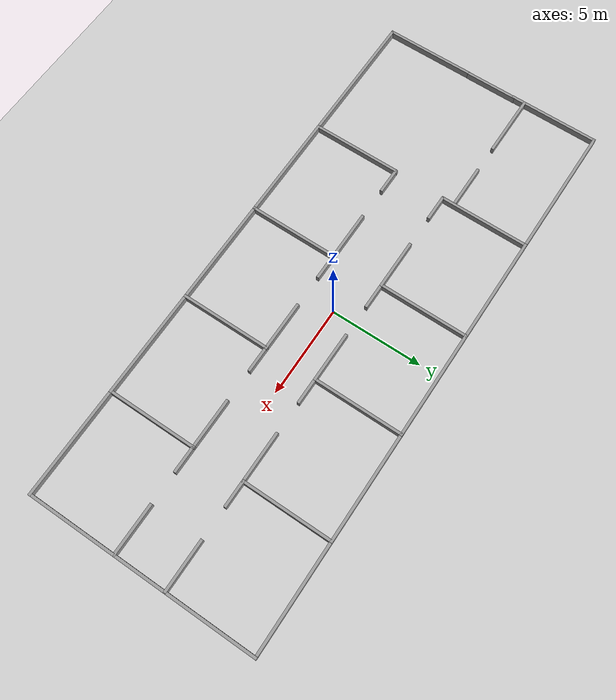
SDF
<sdf version="1.6">
 <world name="default">
  <light name="sun" type="directional">
   <pose>0 0 10 0 -0 0</pose>
   <diffuse>0.8 0.8 0.8 1</diffuse>
   <specular>0.2 0.2 0.2 1</specular>
   <attenuation>
    <range>1000</range>
    <constant>0.9</constant>
    <linear>0.01</linear>
    <quadratic>0.001</quadratic>
   </attenuation>
   <direction>-0.5 0.1 -0.9</direction>
  </light>
  <model name="ground_plane">
   <static>1</static>
   <link name="link">
    <collision name="collision">
     <geometry><plane><normal>0 0 1</normal><size>100 100</size></plane></geometry>
     <surface>
      <contact><collide_bitmask>65535</collide_bitmask></contact>
      <friction><ode><mu>100</mu><mu2>50</mu2></ode></friction>
     </surface>
    </collision>
    <visual name="visual">
     <cast_shadows>0</cast_shadows>
     <geometry><plane><normal>0 0 1</normal><size>100 100</size></plane></geometry>
     <material>
      <script><uri>file://media/materials/scripts/gazebo.material</uri><name>Gazebo/Grey</name></script>
     </material>
    </visual>
   </link>
  </model>
  <gravity>0 0 -9.8</gravity>
  <magnetic_field>6e-06 2.3e-05 -4.2e-05</magnetic_field>
  <atmosphere type="adiabatic"/>
  <physics name="default_physics" default="0" type="ode">
   <max_step_size>0.001</max_step_size>
   <real_time_factor>1</real_time_factor>
   <real_time_update_rate>1000</real_time_update_rate>
  </physics>
  <scene><ambient>0.4 0.4 0.4 1</ambient><background>0.7 0.7 0.7 1</background><shadows>1</shadows></scene>
  <audio><device>default</device></audio>
  <spherical_coordinates>
   <surface_model>EARTH_WGS84</surface_model>
   <latitude_deg>0</latitude_deg>
   <longitude_deg>0</longitude_deg>
   <elevation>0</elevation>
   <heading_deg>0</heading_deg>
  </spherical_coordinates>
  <model name="UCI">
   <pose>-0.200862 -0.165229 0 0 -0 0</pose>
   <link name="Wall_1">
    <collision name="Wall_1_Collision">
     <geometry><box><size>6 0.15 0.4</size></box></geometry>
     <pose>0 0 0.2 0 -0 0</pose>
    </collision>
    <visual name="Wall_1_Visual">
     <pose>0 0 0.2 0 -0 0</pose>
     <geometry><box><size>6 0.15 0.4</size></box></geometry>
     <material>
      <script><uri>file://media/materials/scripts/gazebo.material</uri><name>Gazebo/Grey</name></script>
      <ambient>1 1 1 1</ambient>
     </material>
     <meta><layer>0</layer></meta>
    </visual>
    <pose>-5.10007 -6.275 0 0 -0 0</pose>
   </link>
   <link name="Wall_10">
    <collision name="Wall_10_Collision">
     <geometry><box><size>5 0.15 0.4</size></box></geometry>
     <pose>0 0 0.2 0 -0 0</pose>
    </collision>
    <visual name="Wall_10_Visual">
     <pose>0 0 0.2 0 -0 0</pose>
     <geometry><box><size>5 0.15 0.4</size></box></geometry>
     <material>
      <script><uri>file://media/materials/scripts/gazebo.material</uri><name>Gazebo/Grey</name></script>
      <ambient>1 1 1 1</ambient>
     </material>
     <meta><layer>0</layer></meta>
    </visual>
    <pose>15.3749 -3.85 0 0 -0 -1.5708</pose>
   </link>
   <link name="Wall_13">
    <collision name="Wall_13_Collision">
     <geometry><box><size>6 0.15 0.4</size></box></geometry>
     <pose>0 0 0.2 0 -0 0</pose>
    </collision>
    <visual name="Wall_13_Visual">
     <pose>0 0 0.2 0 -0 0</pose>
     <geometry><box><size>6 0.15 0.4</size></box></geometry>
     <material>
      <script><uri>file://media/materials/scripts/gazebo.material</uri><name>Gazebo/Grey</name></script>
      <ambient>1 1 1 1</ambient>
     </material>
     <meta><layer>0</layer></meta>
    </visual>
    <pose>0.749934 -6.275 0 0 -0 0</pose>
   </link>
   <link name="Wall_15">
    <collision name="Wall_15_Collision">
     <geometry><box><size>6.00027 0.15 0.4</size></box></geometry>
     <pose>0 0 0.2 0 -0 0</pose>
    </collision>
    <visual name="Wall_15_Visual">
     <pose>0 0 0.2 0 -0 0</pose>
     <geometry><box><size>6.00027 0.15 0.4</size></box></geometry>
     <material>
      <script><uri>file://media/materials/scripts/gazebo.material</uri><name>Gazebo/Grey</name></script>
      <ambient>1 1 1 1</ambient>
     </material>
     <meta><layer>0</layer></meta>
    </visual>
    <pose>12.4499 -6.275 0 0 -0 0</pose>
   </link>
   <link name="Wall_17">
    <collision name="Wall_17_Collision">
     <geometry><box><size>3 0.15 0.4</size></box></geometry>
     <pose>0 0 0.2 0 -0 0</pose>
    </collision>
    <visual name="Wall_17_Visual">
     <pose>0 0 0.2 0 -0 0</pose>
     <geometry><box><size>3 0.15 0.4</size></box></geometry>
     <material>
      <script><uri>file://media/materials/scripts/gazebo.material</uri><name>Gazebo/Grey</name></script>
      <ambient>1 1 1 1</ambient>
     </material>
     <meta><layer>0</layer></meta>
    </visual>
    <pose>15.3749 -0 0 0 -0 1.5708</pose>
   </link>
   <link name="Wall_19">
    <collision name="Wall_19_Collision">
     <geometry><box><size>5 0.15 0.4</size></box></geometry>
     <pose>0 0 0.2 0 -0 0</pose>
    </collision>
    <visual name="Wall_19_Visual">
     <pose>0 0 0.2 0 -0 0</pose>
     <geometry><box><size>5 0.15 0.4</size></box></geometry>
     <material>
      <script><uri>file://media/materials/scripts/gazebo.material</uri><name>Gazebo/Grey</name></script>
      <ambient>1 1 1 1</ambient>
     </material>
     <meta><layer>0</layer></meta>
    </visual>
    <pose>15.3749 3.85 0 0 -0 1.5708</pose>
   </link>
   <link name="Wall_2">
    <collision name="Wall_2_Collision">
     <geometry><box><size>5 0.15 0.4</size></box></geometry>
     <pose>0 0 0.2 0 -0 0</pose>
    </collision>
    <visual name="Wall_2_Visual">
     <pose>0 0 0.2 0 -0 0</pose>
     <geometry><box><size>5 0.15 0.4</size></box></geometry>
     <material>
      <script><uri>file://media/materials/scripts/gazebo.material</uri><name>Gazebo/Grey</name></script>
      <ambient>1 1 1 1</ambient>
     </material>
     <meta><layer>0</layer></meta>
    </visual>
    <pose>-2.17507 -3.85 0 0 -0 1.5708</pose>
   </link>
   <link name="Wall_20">
    <collision name="Wall_20_Collision">
     <geometry><box><size>6 0.15 0.4</size></box></geometry>
     <pose>0 0 0.2 0 -0 0</pose>
    </collision>
    <visual name="Wall_20_Visual">
     <pose>0 0 0.2 0 -0 0</pose>
     <geometry><box><size>6 0.15 0.4</size></box></geometry>
     <material>
      <script><uri>file://media/materials/scripts/gazebo.material</uri><name>Gazebo/Grey</name></script>
      <ambient>1 1 1 1</ambient>
     </material>
     <meta><layer>0</layer></meta>
    </visual>
    <pose>12.4499 6.275 0 0 -0 3.14159</pose>
   </link>
   <link name="Wall_21">
    <collision name="Wall_21_Collision">
     <geometry><box><size>5 0.15 0.4</size></box></geometry>
     <pose>0 0 0.2 0 -0 0</pose>
    </collision>
    <visual name="Wall_21_Visual">
     <pose>0 0 0.2 0 -0 0</pose>
     <geometry><box><size>5 0.15 0.4</size></box></geometry>
     <material>
      <script><uri>file://media/materials/scripts/gazebo.material</uri><name>Gazebo/Grey</name></script>
      <ambient>1 1 1 1</ambient>
     </material>
     <meta><layer>0</layer></meta>
    </visual>
    <pose>9.52493 3.85 0 0 -0 -1.5708</pose>
   </link>
   <link name="Wall_23">
    <collision name="Wall_23_Collision">
     <geometry><box><size>5 0.15 0.4</size></box></geometry>
     <pose>0 0 0.2 0 -0 0</pose>
    </collision>
    <visual name="Wall_23_Visual">
     <pose>0 0 0.2 0 -0 0</pose>
     <geometry><box><size>5 0.15 0.4</size></box></geometry>
     <material>
      <script><uri>file://media/materials/scripts/gazebo.material</uri><name>Gazebo/Grey</name></script>
      <ambient>1 1 1 1</ambient>
     </material>
     <meta><layer>0</layer></meta>
    </visual>
    <pose>3.67493 3.85 0 0 -0 1.5708</pose>
   </link>
   <link name="Wall_24">
    <collision name="Wall_24_Collision">
     <geometry><box><size>6 0.15 0.4</size></box></geometry>
     <pose>0 0 0.2 0 -0 0</pose>
    </collision>
    <visual name="Wall_24_Visual">
     <pose>0 0 0.2 0 -0 0</pose>
     <geometry><box><size>6 0.15 0.4</size></box></geometry>
     <material>
      <script><uri>file://media/materials/scripts/gazebo.material</uri><name>Gazebo/Grey</name></script>
      <ambient>1 1 1 1</ambient>
     </material>
     <meta><layer>0</layer></meta>
    </visual>
    <pose>0.749934 6.275 0 0 -0 3.14159</pose>
   </link>
   <link name="Wall_25">
    <collision name="Wall_25_Collision">
     <geometry><box><size>5 0.15 0.4</size></box></geometry>
     <pose>0 0 0.2 0 -0 0</pose>
    </collision>
    <visual name="Wall_25_Visual">
     <pose>0 0 0.2 0 -0 0</pose>
     <geometry><box><size>5 0.15 0.4</size></box></geometry>
     <material>
      <script><uri>file://media/materials/scripts/gazebo.material</uri><name>Gazebo/Grey</name></script>
      <ambient>1 1 1 1</ambient>
     </material>
     <meta><layer>0</layer></meta>
    </visual>
    <pose>-2.17507 3.85 0 0 -0 -1.5708</pose>
   </link>
   <link name="Wall_27">
    <collision name="Wall_27_Collision">
     <geometry><box><size>5 0.15 0.4</size></box></geometry>
     <pose>0 0 0.2 0 -0 0</pose>
    </collision>
    <visual name="Wall_27_Visual">
     <pose>0 0 0.2 0 -0 0</pose>
     <geometry><box><size>5 0.15 0.4</size></box></geometry>
     <material>
      <script><uri>file://media/materials/scripts/gazebo.material</uri><name>Gazebo/Grey</name></script>
      <ambient>1 1 1 1</ambient>
     </material>
     <meta><layer>0</layer></meta>
    </visual>
    <pose>-8.02507 3.85 0 0 -0 1.5708</pose>
   </link>
   <link name="Wall_29">
    <collision name="Wall_29_Collision">
     <geometry><box><size>6 0.15 0.4</size></box></geometry>
     <pose>0 0 0.2 0 -0 0</pose>
    </collision>
    <visual name="Wall_29_Visual">
     <pose>0 0 0.2 0 -0 0</pose>
     <geometry><box><size>6 0.15 0.4</size></box></geometry>
     <material>
      <script><uri>file://media/materials/scripts/gazebo.material</uri><name>Gazebo/Grey</name></script>
      <ambient>1 1 1 1</ambient>
     </material>
     <meta><layer>0</layer></meta>
    </visual>
    <pose>-5.10007 6.275 0 0 -0 0</pose>
   </link>
   <link name="Wall_31">
    <collision name="Wall_31_Collision">
     <geometry><box><size>6 0.15 0.4</size></box></geometry>
     <pose>0 0 0.2 0 -0 0</pose>
    </collision>
    <visual name="Wall_31_Visual">
     <pose>0 0 0.2 0 -0 0</pose>
     <geometry><box><size>6 0.15 0.4</size></box></geometry>
     <material>
      <script><uri>file://media/materials/scripts/gazebo.material</uri><name>Gazebo/Grey</name></script>
      <ambient>1 1 1 1</ambient>
     </material>
     <meta><layer>0</layer></meta>
    </visual>
    <pose>6.59993 6.275 0 0 -0 0</pose>
   </link>
   <link name="Wall_33">
    <collision name="Wall_33_Collision">
     <geometry><box><size>5 0.15 0.4</size></box></geometry>
     <pose>0 0 0.2 0 -0 0</pose>
    </collision>
    <visual name="Wall_33_Visual">
     <pose>0 0 0.2 0 -0 0</pose>
     <geometry><box><size>5 0.15 0.4</size></box></geometry>
     <material>
      <script><uri>file://media/materials/scripts/gazebo.material</uri><name>Gazebo/Grey</name></script>
      <ambient>1 1 1 1</ambient>
     </material>
     <meta><layer>0</layer></meta>
    </visual>
    <pose>-8.02507 -3.85 0 0 -0 1.5708</pose>
   </link>
   <link name="Wall_37">
    <collision name="Wall_37_Collision">
     <geometry><box><size>1.5 0.15 0.4</size></box></geometry>
     <pose>0 0 0.2 0 -0 0</pose>
    </collision>
    <visual name="Wall_37_Visual">
     <pose>0 0 0.2 0 -0 0</pose>
     <geometry><box><size>1.5 0.15 0.4</size></box></geometry>
     <material>
      <script><uri>file://media/materials/scripts/gazebo.material</uri><name>Gazebo/Grey</name></script>
      <ambient>1 1 1 1</ambient>
     </material>
     <meta><layer>0</layer></meta>
    </visual>
    <pose>-7.35007 -1.425 0 0 -0 0</pose>
   </link>
   <link name="Wall_39">
    <collision name="Wall_39_Collision">
     <geometry><box><size>2.8 0.15 0.4</size></box></geometry>
     <pose>0 0 0.2 0 -0 0</pose>
    </collision>
    <visual name="Wall_39_Visual">
     <pose>0 0 0.2 0 -0 0</pose>
     <geometry><box><size>2.8 0.15 0.4</size></box></geometry>
     <material>
      <script><uri>file://media/materials/scripts/gazebo.material</uri><name>Gazebo/Grey</name></script>
      <ambient>1 1 1 1</ambient>
     </material>
     <meta><layer>0</layer></meta>
    </visual>
    <pose>-3.50007 -1.425 0 0 -0 0</pose>
   </link>
   <link name="Wall_4">
    <collision name="Wall_4_Collision">
     <geometry><box><size>5 0.15 0.4</size></box></geometry>
     <pose>0 0 0.2 0 -0 0</pose>
    </collision>
    <visual name="Wall_4_Visual">
     <pose>0 0 0.2 0 -0 0</pose>
     <geometry><box><size>5 0.15 0.4</size></box></geometry>
     <material>
      <script><uri>file://media/materials/scripts/gazebo.material</uri><name>Gazebo/Grey</name></script>
      <ambient>1 1 1 1</ambient>
     </material>
     <meta><layer>0</layer></meta>
    </visual>
    <pose>3.67493 -3.85 0 0 -0 -1.5708</pose>
   </link>
   <link name="Wall_42">
    <collision name="Wall_42_Collision">
     <geometry><box><size>1.5 0.15 0.4</size></box></geometry>
     <pose>0 0 0.2 0 -0 0</pose>
    </collision>
    <visual name="Wall_42_Visual">
     <pose>0 0 0.2 0 -0 0</pose>
     <geometry><box><size>1.5 0.15 0.4</size></box></geometry>
     <material>
      <script><uri>file://media/materials/scripts/gazebo.material</uri><name>Gazebo/Grey</name></script>
      <ambient>1 1 1 1</ambient>
     </material>
     <meta><layer>0</layer></meta>
    </visual>
    <pose>-1.50007 -1.425 0 0 -0 0</pose>
   </link>
   <link name="Wall_44">
    <collision name="Wall_44_Collision">
     <geometry><box><size>2.8 0.15 0.4</size></box></geometry>
     <pose>0 0 0.2 0 -0 0</pose>
    </collision>
    <visual name="Wall_44_Visual">
     <pose>0 0 0.2 0 -0 0</pose>
     <geometry><box><size>2.8 0.15 0.4</size></box></geometry>
     <material>
      <script><uri>file://media/materials/scripts/gazebo.material</uri><name>Gazebo/Grey</name></script>
      <ambient>1 1 1 1</ambient>
     </material>
     <meta><layer>0</layer></meta>
    </visual>
    <pose>2.34993 -1.425 0 0 -0 0</pose>
   </link>
   <link name="Wall_45">
    <collision name="Wall_45_Collision">
     <geometry><box><size>1.5 0.15 0.4</size></box></geometry>
     <pose>0 0 0.2 0 -0 0</pose>
    </collision>
    <visual name="Wall_45_Visual">
     <pose>0 0 0.2 0 -0 0</pose>
     <geometry><box><size>1.5 0.15 0.4</size></box></geometry>
     <material>
      <script><uri>file://media/materials/scripts/gazebo.material</uri><name>Gazebo/Grey</name></script>
      <ambient>1 1 1 1</ambient>
     </material>
     <meta><layer>0</layer></meta>
    </visual>
    <pose>4.34993 -1.425 0 0 -0 0</pose>
   </link>
   <link name="Wall_47">
    <collision name="Wall_47_Collision">
     <geometry><box><size>2.8 0.15 0.4</size></box></geometry>
     <pose>0 0 0.2 0 -0 0</pose>
    </collision>
    <visual name="Wall_47_Visual">
     <pose>0 0 0.2 0 -0 0</pose>
     <geometry><box><size>2.8 0.15 0.4</size></box></geometry>
     <material>
      <script><uri>file://media/materials/scripts/gazebo.material</uri><name>Gazebo/Grey</name></script>
      <ambient>1 1 1 1</ambient>
     </material>
     <meta><layer>0</layer></meta>
    </visual>
    <pose>8.19993 -1.425 0 0 -0 0</pose>
   </link>
   <link name="Wall_48">
    <collision name="Wall_48_Collision">
     <geometry><box><size>1.5 0.15 0.4</size></box></geometry>
     <pose>0 0 0.2 0 -0 0</pose>
    </collision>
    <visual name="Wall_48_Visual">
     <pose>0 0 0.2 0 -0 0</pose>
     <geometry><box><size>1.5 0.15 0.4</size></box></geometry>
     <material>
      <script><uri>file://media/materials/scripts/gazebo.material</uri><name>Gazebo/Grey</name></script>
      <ambient>1 1 1 1</ambient>
     </material>
     <meta><layer>0</layer></meta>
    </visual>
    <pose>10.1999 -1.425 0 0 -0 0</pose>
   </link>
   <link name="Wall_5">
    <collision name="Wall_5_Collision">
     <geometry><box><size>6 0.15 0.4</size></box></geometry>
     <pose>0 0 0.2 0 -0 0</pose>
    </collision>
    <visual name="Wall_5_Visual">
     <pose>0 0 0.2 0 -0 0</pose>
     <geometry><box><size>6 0.15 0.4</size></box></geometry>
     <material>
      <script><uri>file://media/materials/scripts/gazebo.material</uri><name>Gazebo/Grey</name></script>
      <ambient>1 1 1 1</ambient>
     </material>
     <meta><layer>0</layer></meta>
    </visual>
    <pose>6.59993 -6.275 0 0 -0 0</pose>
   </link>
   <link name="Wall_50">
    <collision name="Wall_50_Collision">
     <geometry><box><size>2.8 0.15 0.4</size></box></geometry>
     <pose>0 0 0.2 0 -0 0</pose>
    </collision>
    <visual name="Wall_50_Visual">
     <pose>0 0 0.2 0 -0 0</pose>
     <geometry><box><size>2.8 0.15 0.4</size></box></geometry>
     <material>
      <script><uri>file://media/materials/scripts/gazebo.material</uri><name>Gazebo/Grey</name></script>
      <ambient>1 1 1 1</ambient>
     </material>
     <meta><layer>0</layer></meta>
    </visual>
    <pose>14.0499 -1.425 0 0 -0 0</pose>
   </link>
   <link name="Wall_52">
    <collision name="Wall_52_Collision">
     <geometry><box><size>1.5 0.15 0.4</size></box></geometry>
     <pose>0 0 0.2 0 -0 0</pose>
    </collision>
    <visual name="Wall_52_Visual">
     <pose>0 0 0.2 0 -0 0</pose>
     <geometry><box><size>1.5 0.15 0.4</size></box></geometry>
     <material>
      <script><uri>file://media/materials/scripts/gazebo.material</uri><name>Gazebo/Grey</name></script>
      <ambient>1 1 1 1</ambient>
     </material>
     <meta><layer>0</layer></meta>
    </visual>
    <pose>-7.35007 1.425 0 0 -0 0</pose>
   </link>
   <link name="Wall_54">
    <collision name="Wall_54_Collision">
     <geometry><box><size>2.8 0.15 0.4</size></box></geometry>
     <pose>0 0 0.2 0 -0 0</pose>
    </collision>
    <visual name="Wall_54_Visual">
     <pose>0 0 0.2 0 -0 0</pose>
     <geometry><box><size>2.8 0.15 0.4</size></box></geometry>
     <material>
      <script><uri>file://media/materials/scripts/gazebo.material</uri><name>Gazebo/Grey</name></script>
      <ambient>1 1 1 1</ambient>
     </material>
     <meta><layer>0</layer></meta>
    </visual>
    <pose>-3.50007 1.425 0 0 -0 0</pose>
   </link>
   <link name="Wall_55">
    <collision name="Wall_55_Collision">
     <geometry><box><size>1.5 0.15 0.4</size></box></geometry>
     <pose>0 0 0.2 0 -0 0</pose>
    </collision>
    <visual name="Wall_55_Visual">
     <pose>0 0 0.2 0 -0 0</pose>
     <geometry><box><size>1.5 0.15 0.4</size></box></geometry>
     <material>
      <script><uri>file://media/materials/scripts/gazebo.material</uri><name>Gazebo/Grey</name></script>
      <ambient>1 1 1 1</ambient>
     </material>
     <meta><layer>0</layer></meta>
    </visual>
    <pose>-1.50007 1.425 0 0 -0 0</pose>
   </link>
   <link name="Wall_57">
    <collision name="Wall_57_Collision">
     <geometry><box><size>2.8 0.15 0.4</size></box></geometry>
     <pose>0 0 0.2 0 -0 0</pose>
    </collision>
    <visual name="Wall_57_Visual">
     <pose>0 0 0.2 0 -0 0</pose>
     <geometry><box><size>2.8 0.15 0.4</size></box></geometry>
     <material>
      <script><uri>file://media/materials/scripts/gazebo.material</uri><name>Gazebo/Grey</name></script>
      <ambient>1 1 1 1</ambient>
     </material>
     <meta><layer>0</layer></meta>
    </visual>
    <pose>2.34993 1.425 0 0 -0 0</pose>
   </link>
   <link name="Wall_58">
    <collision name="Wall_58_Collision">
     <geometry><box><size>1.5 0.15 0.4</size></box></geometry>
     <pose>0 0 0.2 0 -0 0</pose>
    </collision>
    <visual name="Wall_58_Visual">
     <pose>0 0 0.2 0 -0 0</pose>
     <geometry><box><size>1.5 0.15 0.4</size></box></geometry>
     <material>
      <script><uri>file://media/materials/scripts/gazebo.material</uri><name>Gazebo/Grey</name></script>
      <ambient>1 1 1 1</ambient>
     </material>
     <meta><layer>0</layer></meta>
    </visual>
    <pose>4.34993 1.425 0 0 -0 0</pose>
   </link>
   <link name="Wall_6">
    <collision name="Wall_6_Collision">
     <geometry><box><size>5 0.15 0.4</size></box></geometry>
     <pose>0 0 0.2 0 -0 0</pose>
    </collision>
    <visual name="Wall_6_Visual">
     <pose>0 0 0.2 0 -0 0</pose>
     <geometry><box><size>5 0.15 0.4</size></box></geometry>
     <material>
      <script><uri>file://media/materials/scripts/gazebo.material</uri><name>Gazebo/Grey</name></script>
      <ambient>1 1 1 1</ambient>
     </material>
     <meta><layer>0</layer></meta>
    </visual>
    <pose>9.52493 -3.85 0 0 -0 1.5708</pose>
   </link>
   <link name="Wall_60">
    <collision name="Wall_60_Collision">
     <geometry><box><size>2.8 0.15 0.4</size></box></geometry>
     <pose>0 0 0.2 0 -0 0</pose>
    </collision>
    <visual name="Wall_60_Visual">
     <pose>0 0 0.2 0 -0 0</pose>
     <geometry><box><size>2.8 0.15 0.4</size></box></geometry>
     <material>
      <script><uri>file://media/materials/scripts/gazebo.material</uri><name>Gazebo/Grey</name></script>
      <ambient>1 1 1 1</ambient>
     </material>
     <meta><layer>0</layer></meta>
    </visual>
    <pose>8.19993 1.425 0 0 -0 0</pose>
   </link>
   <link name="Wall_61">
    <collision name="Wall_61_Collision">
     <geometry><box><size>1.5 0.15 0.4</size></box></geometry>
     <pose>0 0 0.2 0 -0 0</pose>
    </collision>
    <visual name="Wall_61_Visual">
     <pose>0 0 0.2 0 -0 0</pose>
     <geometry><box><size>1.5 0.15 0.4</size></box></geometry>
     <material>
      <script><uri>file://media/materials/scripts/gazebo.material</uri><name>Gazebo/Grey</name></script>
      <ambient>1 1 1 1</ambient>
     </material>
     <meta><layer>0</layer></meta>
    </visual>
    <pose>10.1999 1.425 0 0 -0 0</pose>
   </link>
   <link name="Wall_63">
    <collision name="Wall_63_Collision">
     <geometry><box><size>2.8 0.15 0.4</size></box></geometry>
     <pose>0 0 0.2 0 -0 0</pose>
    </collision>
    <visual name="Wall_63_Visual">
     <pose>0 0 0.2 0 -0 0</pose>
     <geometry><box><size>2.8 0.15 0.4</size></box></geometry>
     <material>
      <script><uri>file://media/materials/scripts/gazebo.material</uri><name>Gazebo/Grey</name></script>
      <ambient>1 1 1 1</ambient>
     </material>
     <meta><layer>0</layer></meta>
    </visual>
    <pose>14.0499 1.425 0 0 -0 0</pose>
   </link>
   <link name="Wall_74">
    <collision name="Wall_74_Collision">
     <geometry><box><size>7.5 0.15 0.4</size></box></geometry>
     <pose>0 0 0.2 0 -0 0</pose>
    </collision>
    <visual name="Wall_74_Visual">
     <pose>0 0 0.2 0 -0 0</pose>
     <geometry><box><size>7.5 0.15 0.4</size></box></geometry>
     <material>
      <script><uri>file://media/materials/scripts/gazebo.material</uri><name>Gazebo/Grey</name></script>
      <ambient>1 1 1 1</ambient>
     </material>
     <meta><layer>0</layer></meta>
    </visual>
    <pose>-11.7001 6.275 0 0 -0 3.14159</pose>
   </link>
   <link name="Wall_78">
    <collision name="Wall_78_Collision">
     <geometry><box><size>7.5 0.15 0.4</size></box></geometry>
     <pose>0 0 0.2 0 -0 0</pose>
    </collision>
    <visual name="Wall_78_Visual">
     <pose>0 0 0.2 0 -0 0</pose>
     <geometry><box><size>7.5 0.15 0.4</size></box></geometry>
     <material>
      <script><uri>file://media/materials/scripts/gazebo.material</uri><name>Gazebo/Grey</name></script>
      <ambient>1 1 1 1</ambient>
     </material>
     <meta><layer>0</layer></meta>
    </visual>
    <pose>-11.7001 -6.275 0 0 -0 3.14159</pose>
   </link>
   <link name="Wall_82">
    <collision name="Wall_82_Collision">
     <geometry><box><size>5 0.15 0.4</size></box></geometry>
     <pose>0 0 0.2 0 -0 0</pose>
    </collision>
    <visual name="Wall_82_Visual">
     <pose>0 0 0.2 0 -0 0</pose>
     <geometry><box><size>5 0.15 0.4</size></box></geometry>
     <material>
      <script><uri>file://media/materials/scripts/gazebo.material</uri><name>Gazebo/Grey</name></script>
      <ambient>1 1 1 1</ambient>
     </material>
     <meta><layer>0</layer></meta>
    </visual>
    <pose>-15.3751 3.85 0 0 -0 -1.5708</pose>
   </link>
   <link name="Wall_84">
    <collision name="Wall_84_Collision">
     <geometry><box><size>5 0.15 0.4</size></box></geometry>
     <pose>0 0 0.2 0 -0 0</pose>
    </collision>
    <visual name="Wall_84_Visual">
     <pose>0 0 0.2 0 -0 0</pose>
     <geometry><box><size>5 0.15 0.4</size></box></geometry>
     <material>
      <script><uri>file://media/materials/scripts/gazebo.material</uri><name>Gazebo/Grey</name></script>
      <ambient>1 1 1 1</ambient>
     </material>
     <meta><layer>0</layer></meta>
    </visual>
    <pose>-15.3751 -3.85 0 0 -0 -1.5708</pose>
   </link>
   <link name="Wall_86">
    <collision name="Wall_86_Collision">
     <geometry><box><size>2.5 0.15 0.4</size></box></geometry>
     <pose>0 0 0.2 0 -0 0</pose>
    </collision>
    <visual name="Wall_86_Visual">
     <pose>0 0 0.2 0 -0 0</pose>
     <geometry><box><size>2.5 0.15 0.4</size></box></geometry>
     <material>
      <script><uri>file://media/materials/scripts/gazebo.material</uri><name>Gazebo/Grey</name></script>
      <ambient>1 1 1 1</ambient>
     </material>
     <meta><layer>0</layer></meta>
    </visual>
    <pose>-9.24207 2.089 0 0 -0 3.14159</pose>
   </link>
   <link name="Wall_88">
    <collision name="Wall_88_Collision">
     <geometry><box><size>3.5 0.15 0.4</size></box></geometry>
     <pose>0 0 0.2 0 -0 0</pose>
    </collision>
    <visual name="Wall_88_Visual">
     <pose>0 0 0.2 0 -0 0</pose>
     <geometry><box><size>3.5 0.15 0.4</size></box></geometry>
     <material>
      <script><uri>file://media/materials/scripts/gazebo.material</uri><name>Gazebo/Grey</name></script>
      <ambient>1 1 1 1</ambient>
     </material>
     <meta><layer>0</layer></meta>
    </visual>
    <pose>-13.6921 2.089 0 0 -0 3.14159</pose>
   </link>
   <static>1</static>
  </model>
  <model name="UCI_0">
   <pose>-15.565 -0.125 0 0 -0 0</pose>
   <link name="Wall_3">
    <collision name="Wall_3_Collision">
     <geometry><box><size>2.9 0.15 0.4</size></box></geometry>
     <pose>0 0 0.2 0 -0 0</pose>
    </collision>
    <visual name="Wall_3_Visual">
     <pose>0 0 0.2 0 -0 0</pose>
     <geometry><box><size>2.9 0.15 0.4</size></box></geometry>
     <material>
      <script><uri>file://media/materials/scripts/gazebo.material</uri><name>Gazebo/Grey</name></script>
      <ambient>1 1 1 1</ambient>
     </material>
     <meta><layer>0</layer></meta>
    </visual>
    <pose>0 0 0 0 -0 1.5708</pose>
   </link>
   <static>1</static>
  </model>
 </world>
</sdf>
